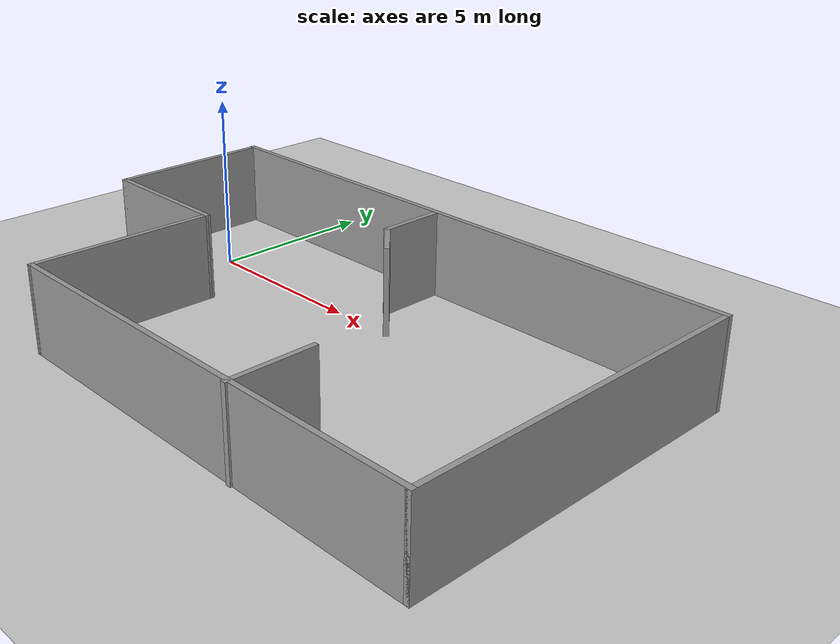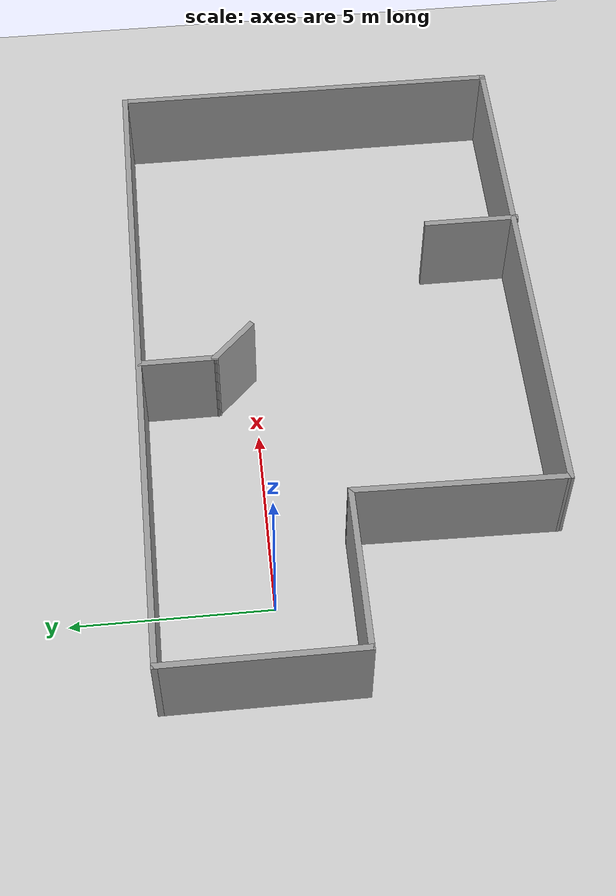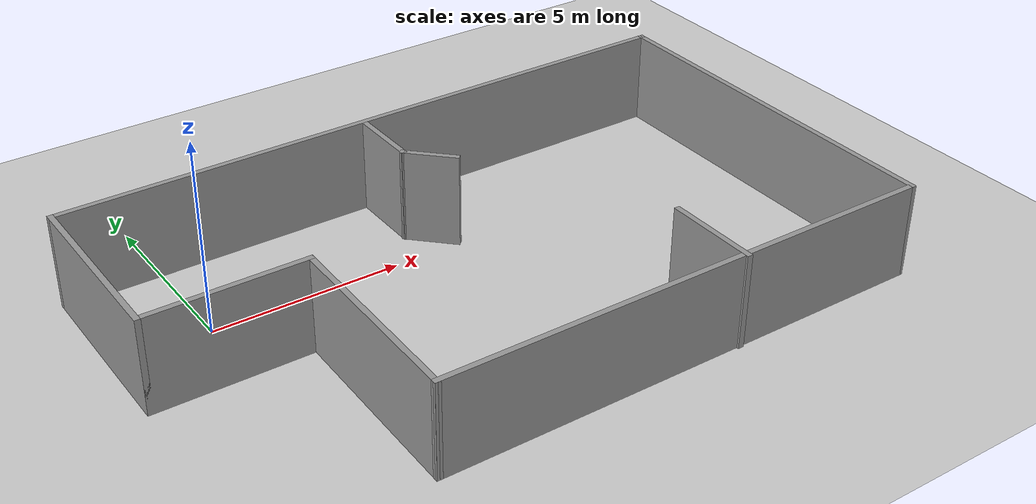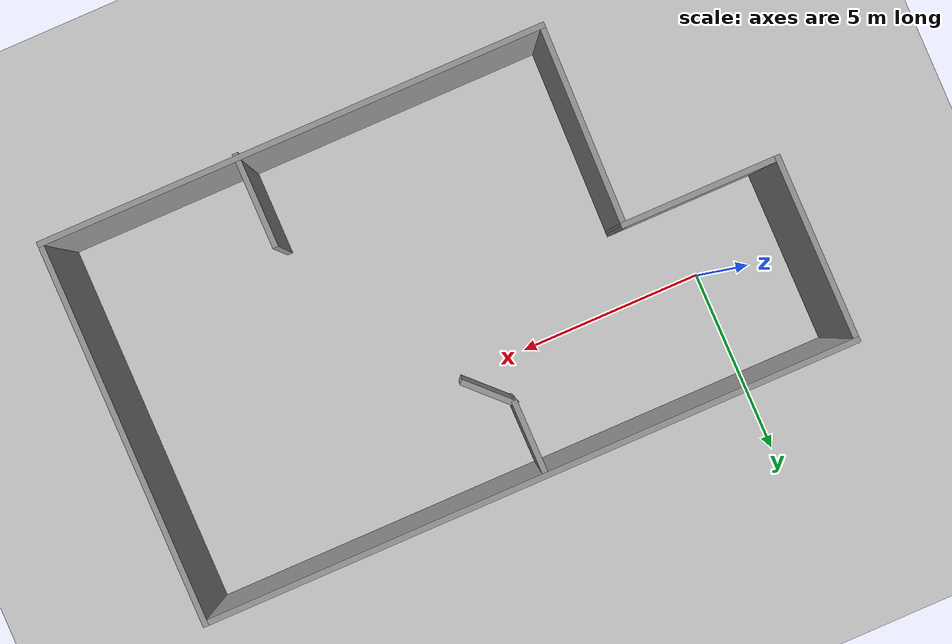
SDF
<sdf version="1.7">
 <world name="default">
  <light name="sun" type="directional">
   <pose>0 0 10 0 -0 0</pose>
   <diffuse>0.8 0.8 0.8 1</diffuse>
   <specular>0.2 0.2 0.2 1</specular>
   <attenuation>
    <range>1000</range>
    <constant>0.9</constant>
    <linear>0.01</linear>
    <quadratic>0.001</quadratic>
   </attenuation>
   <direction>-0.5 0.1 -0.9</direction>
   <spot><inner_angle>0</inner_angle><outer_angle>0</outer_angle><falloff>0</falloff></spot>
  </light>
  <model name="ground_plane">
   <static>1</static>
   <link name="link">
    <collision name="collision">
     <geometry><plane><normal>0 0 1</normal><size>100 100</size></plane></geometry>
     <surface>
      <contact><collide_bitmask>65535</collide_bitmask></contact>
      <friction><ode><mu>100</mu><mu2>50</mu2></ode></friction>
     </surface>
    </collision>
    <visual name="visual">
     <cast_shadows>0</cast_shadows>
     <geometry><plane><normal>0 0 1</normal><size>100 100</size></plane></geometry>
     <material>
      <script><uri>file://media/materials/scripts/gazebo.material</uri><name>Gazebo/Grey</name></script>
     </material>
    </visual>
   </link>
  </model>
  <gravity>0 0 -9.8</gravity>
  <magnetic_field>6e-06 2.3e-05 -4.2e-05</magnetic_field>
  <atmosphere type="adiabatic"/>
  <physics type="ode">
   <max_step_size>0.001</max_step_size>
   <real_time_factor>1</real_time_factor>
   <real_time_update_rate>1000</real_time_update_rate>
  </physics>
  <scene><ambient>0.4 0.4 0.4 1</ambient><background>0.7 0.7 0.7 1</background><shadows>1</shadows></scene>
  <audio><device>default</device></audio>
  <spherical_coordinates>
   <surface_model>EARTH_WGS84</surface_model>
   <latitude_deg>0</latitude_deg>
   <longitude_deg>0</longitude_deg>
   <elevation>0</elevation>
   <heading_deg>0</heading_deg>
  </spherical_coordinates>
  <model name="Untitled">
   <pose>6.26961 -2.18654 0 0 -0 0</pose>
   <link name="Wall_23">
    <collision name="Wall_23_Collision">
     <geometry><box><size>13.5 0.15 2.5</size></box></geometry>
     <pose>0 0 1.25 0 -0 0</pose>
    </collision>
    <visual name="Wall_23_Visual">
     <pose>0 0 1.25 0 -0 0</pose>
     <geometry><box><size>13.5 0.15 2.5</size></box></geometry>
     <material>
      <script><uri>file://media/materials/scripts/gazebo.material</uri><name>Gazebo/Grey</name></script>
      <ambient>1 1 1 1</ambient>
     </material>
     <meta><layer>0</layer></meta>
    </visual>
    <pose>2 -5.0234 0 0 -0 0</pose>
   </link>
   <link name="Wall_24">
    <collision name="Wall_24_Collision">
     <geometry><box><size>10.25 0.15 2.5</size></box></geometry>
     <pose>0 0 1.25 0 -0 0</pose>
    </collision>
    <visual name="Wall_24_Visual">
     <pose>0 0 1.25 0 -0 0</pose>
     <geometry><box><size>10.25 0.15 2.5</size></box></geometry>
     <material>
      <script><uri>file://media/materials/scripts/gazebo.material</uri><name>Gazebo/Grey</name></script>
      <ambient>1 1 1 1</ambient>
     </material>
     <meta><layer>0</layer></meta>
    </visual>
    <pose>8.675 0.0266 0 0 -0 1.5708</pose>
   </link>
   <link name="Wall_25">
    <collision name="Wall_25_Collision">
     <geometry><box><size>17.5 0.15 2.5</size></box></geometry>
     <pose>0 0 1.25 0 -0 0</pose>
    </collision>
    <visual name="Wall_25_Visual">
     <pose>0 0 1.25 0 -0 0</pose>
     <geometry><box><size>17.5 0.15 2.5</size></box></geometry>
     <material>
      <script><uri>file://media/materials/scripts/gazebo.material</uri><name>Gazebo/Grey</name></script>
      <ambient>1 1 1 1</ambient>
     </material>
     <meta><layer>0</layer></meta>
    </visual>
    <pose>-0 5.0766 0 0 -0 3.14159</pose>
   </link>
   <link name="Wall_26">
    <collision name="Wall_26_Collision">
     <geometry><box><size>5 0.15 2.5</size></box></geometry>
     <pose>0 0 1.25 0 -0 0</pose>
    </collision>
    <visual name="Wall_26_Visual">
     <pose>0 0 1.25 0 -0 0</pose>
     <geometry><box><size>5 0.15 2.5</size></box></geometry>
     <material>
      <script><uri>file://media/materials/scripts/gazebo.material</uri><name>Gazebo/Grey</name></script>
      <ambient>1 1 1 1</ambient>
     </material>
     <meta><layer>0</layer></meta>
    </visual>
    <pose>-8.675 2.6516 0 0 -0 -1.5708</pose>
   </link>
   <link name="Wall_27">
    <collision name="Wall_27_Collision">
     <geometry><box><size>4.25 0.15 2.5</size></box></geometry>
     <pose>0 0 1.25 0 -0 0</pose>
    </collision>
    <visual name="Wall_27_Visual">
     <pose>0 0 1.25 0 -0 0</pose>
     <geometry><box><size>4.25 0.15 2.5</size></box></geometry>
     <material>
      <script><uri>file://media/materials/scripts/gazebo.material</uri><name>Gazebo/Grey</name></script>
      <ambient>1 1 1 1</ambient>
     </material>
     <meta><layer>0</layer></meta>
    </visual>
    <pose>-6.625 0.2266 0 0 -0 0</pose>
   </link>
   <link name="Wall_29">
    <collision name="Wall_29_Collision">
     <geometry><box><size>2.5 0.15 2.5</size></box></geometry>
     <pose>0 0 1.25 0 -0 0</pose>
    </collision>
    <visual name="Wall_29_Visual">
     <pose>0 0 1.25 0 -0 0</pose>
     <geometry><box><size>2.5 0.15 2.5</size></box></geometry>
     <material>
      <script><uri>file://media/materials/scripts/gazebo.material</uri><name>Gazebo/Grey</name></script>
      <ambient>1 1 1 1</ambient>
     </material>
     <meta><layer>0</layer></meta>
    </visual>
    <pose>3.43806 -3.9016 0 0 -0 1.5708</pose>
   </link>
   <link name="Wall_31">
    <collision name="Wall_31_Collision">
     <geometry><box><size>5.40095 0.15 2.5</size></box></geometry>
     <pose>0 0 1.25 0 -0 0</pose>
    </collision>
    <visual name="Wall_31_Visual">
     <pose>0 0 1.25 0 -0 0</pose>
     <geometry><box><size>5.40095 0.15 2.5</size></box></geometry>
     <material>
      <script><uri>file://media/materials/scripts/gazebo.material</uri><name>Gazebo/Grey</name></script>
      <ambient>1 1 1 1</ambient>
     </material>
     <meta><layer>0</layer></meta>
    </visual>
    <pose>-4.625 -2.3984 0 0 -0 -1.58984</pose>
   </link>
   <link name="Wall_33">
    <collision name="Wall_33_Collision">
     <geometry><box><size>2 0.15 2.5</size></box></geometry>
     <pose>0 0 1.25 0 -0 0</pose>
    </collision>
    <visual name="Wall_33_Visual">
     <pose>0 0 1.25 0 -0 0</pose>
     <geometry><box><size>2 0.15 2.5</size></box></geometry>
     <material>
      <script><uri>file://media/materials/scripts/gazebo.material</uri><name>Gazebo/Grey</name></script>
      <ambient>1 1 1 1</ambient>
     </material>
     <meta><layer>0</layer></meta>
    </visual>
    <pose>-0.406047 4.0881 0 0 -0 -1.5708</pose>
   </link>
   <link name="Wall_34">
    <collision name="Wall_34_Collision">
     <geometry><box><size>1.5 0.15 2.5</size></box></geometry>
     <pose>0 0 1.25 0 -0 0</pose>
    </collision>
    <visual name="Wall_34_Visual">
     <pose>0 0 1.25 0 -0 0</pose>
     <geometry><box><size>1.5 0.15 2.5</size></box></geometry>
     <material>
      <script><uri>file://media/materials/scripts/gazebo.material</uri><name>Gazebo/Grey</name></script>
      <ambient>1 1 1 1</ambient>
     </material>
     <meta><layer>0</layer></meta>
    </visual>
    <pose>0.07125 2.6858 0 0 -0 -0.785398</pose>
   </link>
   <static>1</static>
  </model>
 </world>
</sdf>
